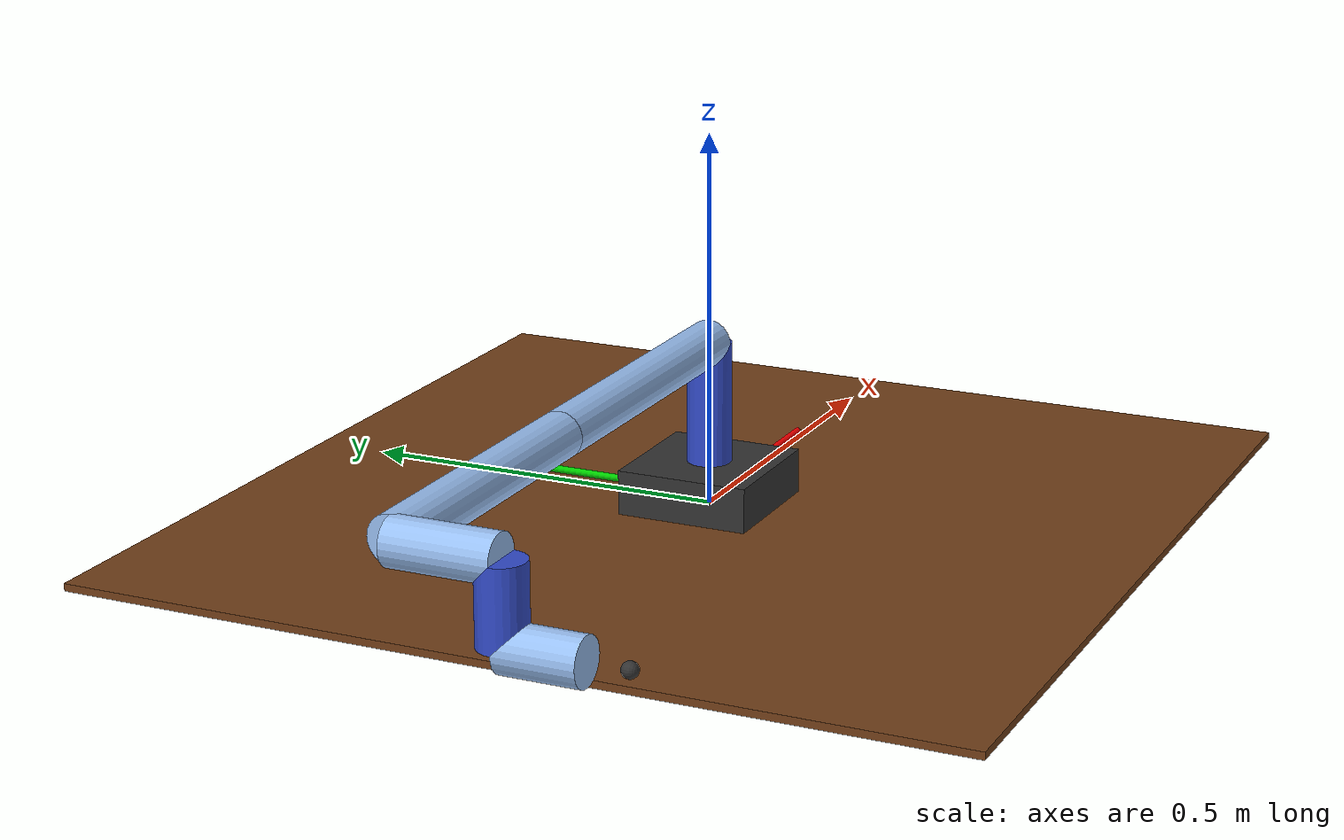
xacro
<?xml version="1.0"?>
<robot xmlns:xacro="http://ros.org/wiki/xacro" name="ur5e_simple">

  <xacro:arg name="ros2_control_params" default=""/>

  <!-- UR5e approximate dimensions (m) -->
  <xacro:arg name="d1" default="0.1625"/>
  <xacro:arg name="a2" default="0.425"/>
  <xacro:arg name="a3" default="0.3922"/>
  <xacro:arg name="d4" default="0.1333"/>
  <xacro:arg name="d5" default="0.0997"/>
  <xacro:arg name="d6" default="0.0996"/>

  <!-- Visual thickness -->
  <xacro:arg name="r_link" default="0.03"/>

  <!-- Base box -->
  <xacro:arg name="base_x" default="0.18"/>
  <xacro:arg name="base_y" default="0.18"/>
  <xacro:arg name="base_z" default="0.06"/>

  <!-- Masses -->
  <xacro:arg name="m_base" default="5.0"/>
  <xacro:arg name="m_link" default="0.8"/>   <!-- IMPORTANT: start light -->
  <xacro:arg name="m_tool" default="0.2"/>

  <!-- Limits -->
  <xacro:arg name="joint_vel" default="2.0"/>
  <xacro:arg name="joint_effort" default="50.0"/>

  <xacro:property name="r" value="$(arg r_link)"/>

  <!--
       Inertia macros
        -->
  <xacro:macro name="inertial_box" params="mass x y z">
    <inertial>
      <mass value="${mass}"/>
      <inertia ixx="${mass*(y*y + z*z)/12.0}" ixy="0.0" ixz="0.0"
               iyy="${mass*(x*x + z*z)/12.0}" iyz="0.0"
               izz="${mass*(x*x + y*y)/12.0}"/>
    </inertial>
  </xacro:macro>

  <xacro:macro name="inertial_cylinder_z" params="mass radius length">
    <inertial>
      <mass value="${mass}"/>
      <inertia ixx="${mass*(3*radius*radius + length*length)/12.0}" ixy="0.0" ixz="0.0"
               iyy="${mass*(3*radius*radius + length*length)/12.0}" iyz="0.0"
               izz="${mass*(radius*radius)/2.0}"/>
    </inertial>
  </xacro:macro>

  <xacro:macro name="inertial_cylinder_x" params="mass radius length">
    <inertial>
      <mass value="${mass}"/>
      <inertia ixx="${mass*(radius*radius)/2.0}" ixy="0.0" ixz="0.0"
               iyy="${mass*(3*radius*radius + length*length)/12.0}" iyz="0.0"
               izz="${mass*(3*radius*radius + length*length)/12.0}"/>
    </inertial>
  </xacro:macro>

  <xacro:macro name="inertial_cylinder_y" params="mass radius length">
    <inertial>
      <mass value="${mass}"/>
      <inertia ixx="${mass*(3*radius*radius + length*length)/12.0}" ixy="0.0" ixz="0.0"
               iyy="${mass*(radius*radius)/2.0}" iyz="0.0"
               izz="${mass*(3*radius*radius + length*length)/12.0}"/>
    </inertial>
  </xacro:macro>

  <!--
       Materials
        -->
  <material name="dark"><color rgba="0.2 0.2 0.2 1.0"/></material>
  <material name="pale_blue"><color rgba="0.6 0.75 0.95 1.0"/></material>
  <material name="blue"><color rgba="0.2 0.3 0.8 1.0"/></material>

  <!--
       World + base
        -->
  <link name="world"/>

  <joint name="world_to_base" type="fixed">
    <parent link="world"/>
    <child link="base_link"/>
    <origin xyz="0 0 0" rpy="0 0 0"/>
  </joint>

    <!-- Reference floor: 1.2 m x 1.2 m centered at base_link -->
    <link name="reference_floor">
    <visual>
        <origin xyz="0 0 -0.005" rpy="0 0 0"/>
        <geometry>
        <box size="1.2 1.2 0.01"/>
        </geometry>
        <material name="brown">
        <color rgba="0.45 0.25 0.10 1.0"/>
        </material>
    </visual>
    <collision>
        <origin xyz="0 0 -0.005" rpy="0 0 0"/>
        <geometry>
        <box size="1.2 1.2 0.01"/>
        </geometry>
    </collision>

    <inertial>
        <mass value="0.1"/>
        <origin xyz="0 0 -0.005" rpy="0 0 0"/>
        <inertia ixx="0.012" ixy="0" ixz="0"
                iyy="0.012" iyz="0"
                izz="0.024"/>
    </inertial>
    </link>

    <joint name="world_to_reference_floor" type="fixed">
    <parent link="world"/>
    <child link="reference_floor"/>
    <origin xyz="0 0 0" rpy="0 0 0"/>
    </joint>

    <!-- X axis: red, 30 cm long, 1 cm thick -->
    <link name="x_axis_ref">
    <visual>
        <origin xyz="0.15 0 0.01" rpy="0 1.57079632679 0"/>
        <geometry>
        <cylinder radius="0.005" length="0.30"/>
        </geometry>
        <material name="red">
        <color rgba="1.0 0.0 0.0 1.0"/>
        </material>
    </visual>
    <collision>
        <origin xyz="0.15 0 0.01" rpy="0 1.57079632679 0"/>
        <geometry>
        <cylinder radius="0.005" length="0.30"/>
        </geometry>
    </collision>

    <inertial>
        <mass value="0.01"/>
        <origin xyz="0.15 0 0.01" rpy="0 1.57079632679 0"/>
        <inertia ixx="0.000001" ixy="0" ixz="0"
                iyy="0.000001" iyz="0"
                izz="0.000001"/>
    </inertial>
    </link>

    <joint name="world_to_x_axis_ref" type="fixed">
    <parent link="world"/>
    <child link="x_axis_ref"/>
    <origin xyz="0 0 0" rpy="0 0 0"/>
    </joint>

    <!-- Y axis: green, 30 cm long, 1 cm thick -->
    <link name="y_axis_ref">
    <visual>
        <origin xyz="0 0.15 0.015" rpy="1.57079632679 0 0"/>
        <geometry>
        <cylinder radius="0.005" length="0.30"/>
        </geometry>
        <material name="green">
        <color rgba="0.0 0.8 0.0 1.0"/>
        </material>
    </visual>
    <collision>
        <origin xyz="0 0.15 0.015" rpy="1.57079632679 0 0"/>
        <geometry>
        <cylinder radius="0.005" length="0.30"/>
        </geometry>
    </collision>

    <inertial>
        <mass value="0.01"/>
        <origin xyz="0 0.15 0.015" rpy="1.57079632679 0 0"/>
        <inertia ixx="0.000001" ixy="0" ixz="0"
                iyy="0.000001" iyz="0"
                izz="0.000001"/>
    </inertial>
    </link>

    <joint name="world_to_y_axis_ref" type="fixed">
    <parent link="world"/>
    <child link="y_axis_ref"/>
    <origin xyz="0 0 0" rpy="0 0 0"/>
    </joint>

  <link name="base_link">
    <visual>
      <origin xyz="0 0 ${$(arg base_z)/2.0}" rpy="0 0 0"/>
      <geometry><box size="$(arg base_x) $(arg base_y) $(arg base_z)"/></geometry>
      <material name="dark"/>
    </visual>
    <collision>
      <origin xyz="0 0 ${$(arg base_z)/2.0}" rpy="0 0 0"/>
      <geometry><box size="$(arg base_x) $(arg base_y) $(arg base_z)"/></geometry>
    </collision>
    <xacro:inertial_box mass="$(arg m_base)" x="$(arg base_x)" y="$(arg base_y)" z="$(arg base_z)"/>
  </link>

  <!--
       Link macros (cylinders along x/y/z)
        -->
  <xacro:macro name="cyl_z" params="name length mass sign">
    <!-- sign: +1 or -1 to draw toward +Z or -Z -->
    <link name="${name}">
      <visual>
        <origin xyz="0 0 ${sign*length/2.0}" rpy="0 0 0"/>
        <geometry><cylinder radius="${r}" length="${length}"/></geometry>
        <material name="blue"/>
      </visual>
      <collision>
        <origin xyz="0 0 ${sign*length/2.0}" rpy="0 0 0"/>
        <geometry><cylinder radius="${r}" length="${length}"/></geometry>
      </collision>
      <xacro:inertial_cylinder_z mass="${mass}" radius="${r}" length="${length}"/>
    </link>
  </xacro:macro>

  <xacro:macro name="cyl_x" params="name length mass sign">
    <!-- sign: +1 or -1 to draw toward +X or -X -->
    <link name="${name}">
      <visual>
        <origin xyz="${sign*length/2.0} 0 0" rpy="0 1.57079632679 0"/>
        <geometry><cylinder radius="${r}" length="${length}"/></geometry>
        <material name="pale_blue"/>
      </visual>
      <collision>
        <origin xyz="${sign*length/2.0} 0 0" rpy="0 1.57079632679 0"/>
        <geometry><cylinder radius="${r}" length="${length}"/></geometry>
      </collision>
      <xacro:inertial_cylinder_x mass="${mass}" radius="${r}" length="${length}"/>
    </link>
  </xacro:macro>

  <xacro:macro name="cyl_y" params="name length mass sign">
    <!-- sign: +1 or -1 to draw toward +Y or -Y -->
    <link name="${name}">
      <visual>
        <origin xyz="0 ${sign*length/2.0} 0" rpy="1.57079632679 0 0"/>
        <geometry><cylinder radius="${r}" length="${length}"/></geometry>
        <material name="pale_blue"/>
      </visual>
      <collision>
        <origin xyz="0 ${sign*length/2.0} 0" rpy="1.57079632679 0 0"/>
        <geometry><cylinder radius="${r}" length="${length}"/></geometry>
      </collision>
      <xacro:inertial_cylinder_y mass="${mass}" radius="${r}" length="${length}"/>
    </link>
  </xacro:macro>

  <!-- Physical links -->
  <xacro:cyl_z name="link1" length="$(arg d1)" mass="$(arg m_link)" sign="1"/>
  <xacro:cyl_x name="link2" length="$(arg a2)" mass="$(arg m_link)" sign="-1"/>
  <xacro:cyl_x name="link3" length="$(arg a3)" mass="$(arg m_link)" sign="-1"/>

  <!-- Wrist links oriented as you requested:
       link4 -> -Y, link5 -> -Z, link6 -> -Y -->
  <xacro:cyl_y name="link4" length="$(arg d4)" mass="$(arg m_link)" sign="-1"/>
  <xacro:cyl_z name="link5" length="$(arg d5)" mass="$(arg m_link)" sign="-1"/>
  <xacro:cyl_y name="link6" length="$(arg d6)" mass="$(arg m_link)" sign="-1"/>

  <!--
       Joints (simple, practical)
        -->

  <!-- joint1: base yaw -->
  <joint name="joint1" type="revolute">
    <parent link="base_link"/>
    <child link="link1"/>
    <origin xyz="0 0 $(arg base_z)" rpy="0 0 0"/>
    <axis xyz="0 0 1"/>
    <limit lower="-6.28318530718" upper="6.28318530718" effort="$(arg joint_effort)" velocity="$(arg joint_vel)"/>
    <dynamics damping="1.0" friction="0.0"/>
  </joint>

  <!-- joint2: shoulder pitch (about Y) at top of link1 -->
  <joint name="joint2" type="revolute">
    <parent link="link1"/>
    <child link="link2"/>
    <origin xyz="0 0 $(arg d1)" rpy="0 0 0"/>
    <axis xyz="0 -1 0"/>
    <limit lower="-6.28318530718" upper="6.28318530718" effort="$(arg joint_effort)" velocity="$(arg joint_vel)"/>
    <dynamics damping="2.0" friction="0.0"/>
  </joint>

  <!-- joint3: elbow pitch (about Y) at end of link2 (toward -X) -->
  <joint name="joint3" type="revolute">
    <parent link="link2"/>
    <child link="link3"/>
    <origin xyz="-$(arg a2) 0 0" rpy="0 0 0"/>
    <axis xyz="0 -1 0"/>
    <limit lower="-6.28318530718" upper="6.28318530718" effort="$(arg joint_effort)" velocity="$(arg joint_vel)"/>
    <dynamics damping="2.0" friction="0.0"/>
  </joint>

  <!-- joint4: wrist1 (about Y) at end of link3 (toward -X) -->
  <joint name="joint4" type="revolute">
    <parent link="link3"/>
    <child link="link4"/>
    <origin xyz="-$(arg a3) 0 0" rpy="0 0 0"/>
    <axis xyz="0 -1 0"/>
    <limit lower="-6.28318530718" upper="6.28318530718" effort="$(arg joint_effort)" velocity="$(arg joint_vel)"/>
    <dynamics damping="1.0" friction="0.0"/>
  </joint>

  <!-- joint5: wrist2 (about Z) at end of link4 (toward -Y) -->
  <joint name="joint5" type="revolute">
    <parent link="link4"/>
    <child link="link5"/>
    <origin xyz="0 -$(arg d4) 0" rpy="0 0 0"/>
    <axis xyz="0 0 -1"/>
    <limit lower="-6.28318530718" upper="6.28318530718" effort="$(arg joint_effort)" velocity="$(arg joint_vel)"/>
    <dynamics damping="1.0" friction="0.0"/>
  </joint>

  <!-- joint6: wrist3 (about Y) at end of link5 (along +Z) -->
  <joint name="joint6" type="revolute">
    <parent link="link5"/>
    <child link="link6"/>
    <origin xyz="0 0 -$(arg d5)" rpy="0 0 0"/>
    <axis xyz="0 -1 0"/>
    <limit lower="-6.28318530718" upper="6.28318530718" effort="$(arg joint_effort)" velocity="$(arg joint_vel)"/>
    <dynamics damping="0.8" friction="0.0"/>
  </joint>

  <!-- Tool frame: small sphere 15 cm along -Y from link6 frame -->
  <link name="tool">
    <visual>
      <origin xyz="0 0 0" rpy="0 0 0"/>
      <geometry>
        <sphere radius="0.01"/>
      </geometry>
      <material name="dark"/>
    </visual>

    <collision>
      <origin xyz="0 0 0" rpy="0 0 0"/>
      <geometry>
        <sphere radius="0.01"/>
      </geometry>
    </collision>

    <inertial>
        <mass value="0.01"/>
        <origin xyz="0 0 0" rpy="0 0 0"/>
        <inertia
        ixx="0.000001"
        ixy="0.0"
        ixz="0.0"
        iyy="0.000001"
        iyz="0.0"
        izz="0.000001"/>
    </inertial>
  </link>

  <joint name="link6_to_tool" type="fixed">
    <parent link="link6"/>
    <child link="tool"/>
    <origin xyz="0 -0.15 0" rpy="1.5708 0 0"/>
  </joint>

  <!--
       ros2_control (gz_ros2_control)
        -->
  <ros2_control name="MyArmSystem" type="system">
    <hardware>
      <plugin>gz_ros2_control/GazeboSimSystem</plugin>
    </hardware>

    <joint name="joint1">
      <command_interface name="position"/>
      <state_interface name="position"/>
      <state_interface name="velocity"/>
    </joint>
    <joint name="joint2">
      <command_interface name="position"/>
      <state_interface name="position"/>
      <state_interface name="velocity"/>
    </joint>
    <joint name="joint3">
      <command_interface name="position"/>
      <state_interface name="position"/>
      <state_interface name="velocity"/>
    </joint>
    <joint name="joint4">
      <command_interface name="position"/>
      <state_interface name="position"/>
      <state_interface name="velocity"/>
    </joint>
    <joint name="joint5">
      <command_interface name="position"/>
      <state_interface name="position"/>
      <state_interface name="velocity"/>
    </joint>
    <joint name="joint6">
      <command_interface name="position"/>
      <state_interface name="position"/>
      <state_interface name="velocity"/>
    </joint>
  </ros2_control>

    <gazebo>
        <plugin name="gz_ros2_control::GazeboSimROS2ControlPlugin"
                filename="gz_ros2_control-system">
            <parameters>$(arg ros2_control_params)</parameters>
        </plugin>
    </gazebo>

</robot>
